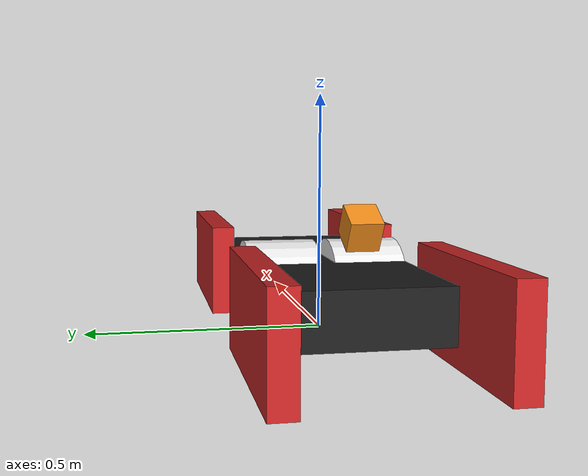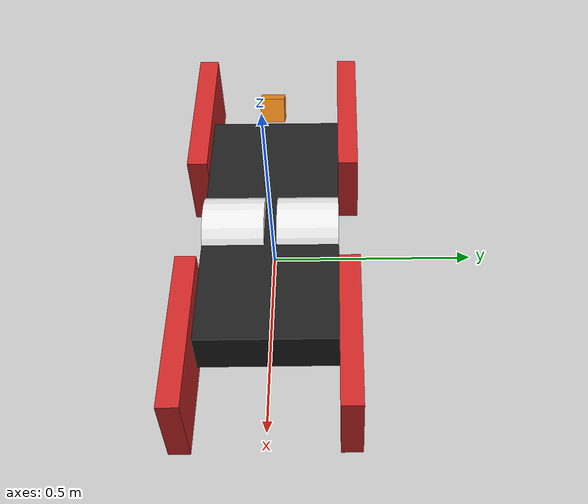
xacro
<?xml version="1.0"?>
<robot xmlns:xacro="http://www.ros.org/wiki/xacro" >

<!-- Main Body -->
    <xacro:property name="body_length" value="0.7"/>
    <xacro:property name="body_width" value="0.33"/>
    <xacro:property name="body_height" value="0.15"/>
    <xacro:property name="body_mass" value="25.0"/>

    <link name="body_link">
        <visual>
            <origin rpy="0 0 0" xyz="0 0 ${(body_height/2)+0.02}"/>
            <geometry>
                <box size="${body_length} ${body_width} ${body_height-0.04}"/>
            </geometry>
            <material name="black"/>
        </visual>
        <collision>
            <origin rpy="0 0 0" xyz="0 0 ${(body_height/2)}"/>
            <geometry>
                <box size="0.1 0.1 0.1"/>
            </geometry>
        </collision>
        <innertial></innertial>
    </link>

<!-- Chains (represented by wheels) -->
<!-- wheel macro-->
    <xacro:property name="wheel_length" value="0.15"/>
    <xacro:property name="wheel_radius" value="${0.19/2}"/>
    <xacro:property name="wheel_mass" value="1"/>
    <xacro:property name="wheel_seperation" value="${body_width - wheel_length}"/>

    <xacro:macro name="wheel_link" params="position">
        <link name="${position}_wheel_link">
            <visual>
                <origin xyz="0 0 0" rpy="${pi/2} 0 0"/>
                <geometry>
                <cylinder length="${wheel_length}" radius="${wheel_radius}"/>
                </geometry>
                <material name="white"/>
            </visual>

            <collision>
                <origin xyz="0 0 0" rpy="${pi/2} 0 0"/>
                <geometry>
                <cylinder length="${wheel_length}" radius="${wheel_radius}"/>
                </geometry>
            </collision>
            <xacro:inertial_cylinder mass="${wheel_mass}" length="${wheel_length}" radius="${wheel_radius}">
                <origin xyz="0 0 0" rpy="${pi/2} 0 0"/>
            </xacro:inertial_cylinder>
        </link>
    </xacro:macro>

<!-- Left Chain-->
<!-- Main Wheel-->
    <joint name="left_chain_joint" type="continuous">
        <origin xyz="0 ${wheel_seperation/2} ${wheel_radius}" rpy="0 0 0"/>
        <parent link="body_link"/>
        <child link="left_main_wheel_link"/>
        <axis xyz="0 1 0"/>
    </joint>

    <xacro:wheel_link position="left_main"/>

<!-- Right Chain-->
<!-- Main Wheel-->
    <joint name="right_chain_joint" type="continuous">
        <origin xyz="0 ${-wheel_seperation/2} ${wheel_radius}" rpy="0 0 0"/>
        <parent link="body_link"/>
        <child link="right_main_wheel_link"/>
        <axis xyz="0 1 0"/>
    </joint>

    <xacro:wheel_link position="right_main"/>

<!-- Flipper -->
    <xacro:property name="flipper_length" value="0.4"/>
    <xacro:property name="flipper_width" value="0.05"/>
    <xacro:property name="flipper_height" value="0.2"/>
    <xacro:property name="flipper_mass" value="2.0"/>

<!-- Flipper link macro -->
    <xacro:macro name="flipper_link" params="position">
        <link name="flipper_${position}_link">
            <visual>
                <origin xyz="${(flipper_height/2) - (flipper_length/2)} 0 0" rpy="0 0 0"/>
                <geometry>
                    <box size="${flipper_length} ${flipper_width} ${flipper_height}"/>
                </geometry>
                <material name="red"/>
            </visual>
            <collision>
                <origin xyz="${(flipper_height/2) - (flipper_length/2)} 0 0" rpy="0 0 0"/>
                <geometry>
                    <box size="${flipper_length} ${flipper_width} ${flipper_height}"/>
                </geometry>
            </collision>
            <xacro:inertial_box mass="${flipper_mass}" x="${flipper_length}" y="${flipper_width}" z="${flipper_height}">
                <origin xyz="${(flipper_height/2) - (flipper_length/2)} 0 0" rpy="0 0 0"/>
            </xacro:inertial_box>
        </link>
    </xacro:macro>

<!-- Front Left Flipper-->
    <joint name="flipper_fr_joint" type="continuous">
        <origin xyz="${body_length/2 - flipper_height/2} ${(body_width/2) + (flipper_width/2)} ${flipper_height/2}" rpy="0 ${pi} 0"/>
        <parent link="body_link"/>
        <child link="flipper_fr_link"/>
        <axis xyz="0 1 0"/>
    </joint>

    <xacro:flipper_link position="fr"/>

<!-- Front Right Flipper-->
    <joint name="flipper_fl_joint" type="continuous">
        <origin xyz="${(body_length/2) - (flipper_height/2)} ${-(body_width/2) - (flipper_width/2)} ${flipper_height/2}" rpy="0 ${pi} 0"/>
        <parent link="body_link"/>
        <child link="flipper_fl_link"/>
        <axis xyz="0 1 0"/>
    </joint>

    <xacro:flipper_link position="fl"/>

<!-- Rear Left Flipper-->
    <joint name="flipper_rr_joint" type="continuous">
        <origin xyz="${-(body_length/2) + (flipper_height/2)} ${(body_width/2) + (flipper_width/2)} ${flipper_height/2}" rpy="0 0 0"/>
        <parent link="body_link"/>
        <child link="flipper_rr_link"/>
        <axis xyz="0 -1 0"/>
    </joint>

    <xacro:flipper_link position="rr"/>

<!-- Rear Right Flipper-->
    <joint name="flipper_rl_joint" type="continuous">
        <origin xyz="${-(body_length/2) + (flipper_height/2)} ${-(body_width/2) - (flipper_width/2)} ${flipper_height/2}" rpy="0 0 0"/>
        <parent link="body_link"/>
        <child link="flipper_rl_link"/>
        <axis xyz="0 -1 0"/>
    </joint>

    <xacro:flipper_link position="rl"/>

<!-- Sensors -->
    <!-- LiDAR -->
    <joint name="lidar_joint" type="fixed">
        <origin xyz="-0.3 0 0.25" rpy="0 ${-30*pi/180} 0"/>
        <parent link="body_link"/>
        <child link="lidar_link"/>
    </joint>

    <link name="lidar_link">
        <visual>
            <origin rpy="0 0 0" xyz="0 0 0"/>
            <geometry>
                <box size="0.06 0.06 0.06"/>
            </geometry>
            <material name="orange"/>
        </visual>
        <collision>
            <origin rpy="0 0 0" xyz="0 0 0"/>
            <geometry>
                <box size="0.06 0.06 0.06"/>
            </geometry>
        </collision>
        <innertial></innertial>
    </link>

</robot>
